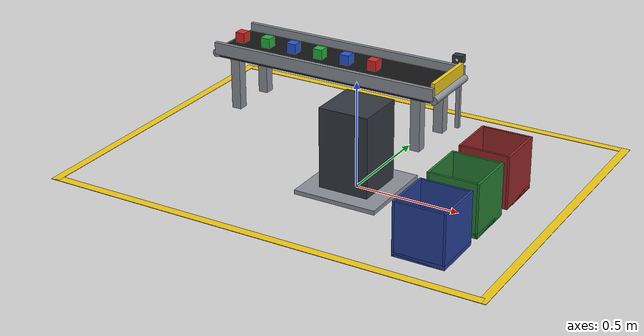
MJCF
<mujoco model="color_sorting_cell">
  <asset>
    <material name="steel" rgba="0.55 0.57 0.6 1"/>
    <material name="dark_steel" rgba="0.2 0.22 0.25 1"/>
    <material name="belt" rgba="0.08 0.08 0.08 1"/>
    <material name="safety_yellow" rgba="0.95 0.8 0.1 1"/>
    <material name="sensor_lens" rgba="0.9 0.9 1 1" emission="0.6"/>
    <material name="part_red" rgba="0.85 0.15 0.15 1"/>
    <material name="part_green" rgba="0.15 0.7 0.25 1"/>
    <material name="part_blue" rgba="0.15 0.35 0.85 1"/>
    <material name="bin_red" rgba="0.6 0.15 0.15 1"/>
    <material name="bin_green" rgba="0.15 0.5 0.2 1"/>
    <material name="bin_blue" rgba="0.15 0.25 0.6 1"/>
  </asset>

  <default>
    <default class="bin_wall">
      <geom type="box"/>
    </default>
    <default class="decor">
      <geom contype="0" conaffinity="0"/>
    </default>
  </default>

  <worldbody>
    <body name="pedestal">
      <geom type="box" pos="0 0 0.2" size="0.12 0.12 0.2" material="dark_steel"/>
      <geom type="box" pos="0 0 0.01" size="0.2 0.2 0.01" material="steel"/>
    </body>

    <!-- Accumulating conveyor: parts travel in +x and queue against the end stop at the pick station.
         The belt itself is static; sim_bridge.py drives the parts that rest on it. -->
    <body name="conveyor">
      <geom name="belt" type="box" pos="-0.45 0.6 0.28" size="0.6 0.15 0.02" material="belt"/>
      <geom type="box" pos="-0.45 0.44 0.31" size="0.6 0.01 0.03" material="steel"/>
      <geom type="box" pos="-0.45 0.76 0.31" size="0.6 0.01 0.03" material="steel"/>
      <geom type="cylinder" pos="-1.05 0.6 0.28" zaxis="0 1 0" size="0.02 0.16" material="steel"/>
      <geom type="cylinder" pos="0.15 0.6 0.28" zaxis="0 1 0" size="0.02 0.16" material="steel"/>
      <geom name="end_stop" type="box" pos="0.14 0.6 0.33" size="0.01 0.15 0.03" material="safety_yellow"/>
      <geom type="box" pos="-0.95 0.48 0.13" size="0.025 0.025 0.13" material="steel"/>
      <geom type="box" pos="-0.95 0.72 0.13" size="0.025 0.025 0.13" material="steel"/>
      <geom type="box" pos="0.05 0.48 0.13" size="0.025 0.025 0.13" material="steel"/>
      <geom type="box" pos="0.05 0.72 0.13" size="0.025 0.025 0.13" material="steel"/>
    </body>

    <!-- Colour sensor looking across the belt at the pick station. -->
    <body name="color_sensor" childclass="decor">
      <geom type="box" pos="0.105 0.8 0.18" size="0.01 0.01 0.18" material="steel"/>
      <geom type="box" pos="0.105 0.79 0.36" size="0.025 0.02 0.02" material="dark_steel"/>
      <geom type="cylinder" pos="0.105 0.77 0.36" zaxis="0 1 0" size="0.008 0.002" material="sensor_lens"/>
    </body>

    <!-- One bin per colour, open at the top. -->
    <body name="bin_red" pos="0.55 0.25 0" childclass="bin_wall">
      <geom pos="0 0 0.01" size="0.12 0.12 0.01" material="bin_red"/>
      <geom pos="0.115 0 0.125" size="0.005 0.12 0.125" material="bin_red"/>
      <geom pos="-0.115 0 0.125" size="0.005 0.12 0.125" material="bin_red"/>
      <geom pos="0 0.115 0.125" size="0.11 0.005 0.125" material="bin_red"/>
      <geom pos="0 -0.115 0.125" size="0.11 0.005 0.125" material="bin_red"/>
    </body>
    <body name="bin_green" pos="0.55 -0.05 0" childclass="bin_wall">
      <geom pos="0 0 0.01" size="0.12 0.12 0.01" material="bin_green"/>
      <geom pos="0.115 0 0.125" size="0.005 0.12 0.125" material="bin_green"/>
      <geom pos="-0.115 0 0.125" size="0.005 0.12 0.125" material="bin_green"/>
      <geom pos="0 0.115 0.125" size="0.11 0.005 0.125" material="bin_green"/>
      <geom pos="0 -0.115 0.125" size="0.11 0.005 0.125" material="bin_green"/>
    </body>
    <body name="bin_blue" pos="0.55 -0.35 0" childclass="bin_wall">
      <geom pos="0 0 0.01" size="0.12 0.12 0.01" material="bin_blue"/>
      <geom pos="0.115 0 0.125" size="0.005 0.12 0.125" material="bin_blue"/>
      <geom pos="-0.115 0 0.125" size="0.005 0.12 0.125" material="bin_blue"/>
      <geom pos="0 0.115 0.125" size="0.11 0.005 0.125" material="bin_blue"/>
      <geom pos="0 -0.115 0.125" size="0.11 0.005 0.125" material="bin_blue"/>
    </body>

    <body name="floor_markings" childclass="decor">
      <geom type="box" pos="-0.15 0.95 0.001" size="1.05 0.02 0.001" material="safety_yellow"/>
      <geom type="box" pos="-0.15 -0.6 0.001" size="1.05 0.02 0.001" material="safety_yellow"/>
      <geom type="box" pos="0.9 0.175 0.001" size="0.02 0.795 0.001" material="safety_yellow"/>
      <geom type="box" pos="-1.2 0.175 0.001" size="0.02 0.795 0.001" material="safety_yellow"/>
    </body>

    <!-- 5 cm parts in mixed colour order; the first one reaches the pick station after a few seconds. -->
    <body name="part_1" pos="-0.25 0.6 0.326">
      <freejoint/>
      <geom type="box" size="0.025 0.025 0.025" mass="0.1" material="part_red"/>
    </body>
    <body name="part_2" pos="-0.4 0.6 0.326">
      <freejoint/>
      <geom type="box" size="0.025 0.025 0.025" mass="0.1" material="part_blue"/>
    </body>
    <body name="part_3" pos="-0.55 0.6 0.326">
      <freejoint/>
      <geom type="box" size="0.025 0.025 0.025" mass="0.1" material="part_green"/>
    </body>
    <body name="part_4" pos="-0.7 0.6 0.326">
      <freejoint/>
      <geom type="box" size="0.025 0.025 0.025" mass="0.1" material="part_blue"/>
    </body>
    <body name="part_5" pos="-0.85 0.6 0.326">
      <freejoint/>
      <geom type="box" size="0.025 0.025 0.025" mass="0.1" material="part_green"/>
    </body>
    <body name="part_6" pos="-1.0 0.6 0.326">
      <freejoint/>
      <geom type="box" size="0.025 0.025 0.025" mass="0.1" material="part_red"/>
    </body>
  </worldbody>
</mujoco>
